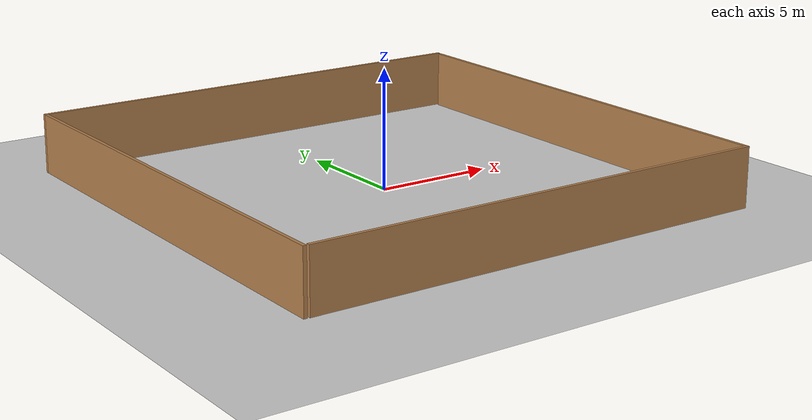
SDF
<?xml version='1.0'?>
<sdf version='1.7'>
<world name='default'>

    <pose>0.100838 -0.050768 0 0 -0 0</pose>
      <light name='sun' type='directional'>
      <cast_shadows>1</cast_shadows>
      <pose frame=''>0 0 10 0 -0 0</pose>
      <diffuse>0.8 0.8 0.8 1</diffuse>
      <specular>0.1 0.1 0.1 1</specular>
      <attenuation>
        <range>1000</range>
        <constant>0.9</constant>
        <linear>0.01</linear>
        <quadratic>0.001</quadratic>
      </attenuation>
      <direction>-0.5 0.5 -1</direction>
    </light>
    <model name='ground_plane'>
      <static>1</static>
      <link name='link'>
        <collision name='collision'>
          <geometry>
            <plane>
              <normal>0 0 1</normal>
              <size>100 100</size>
            </plane>
          </geometry>
          <surface>
            <friction>
              <ode>
                <mu>100</mu>
                <mu2>50</mu2>
              </ode>
              <torsional>
                <ode/>
              </torsional>
            </friction>
            <contact>
              <ode/>
            </contact>
            <bounce/>
          </surface>
          <max_contacts>10</max_contacts>
        </collision>
        <visual name='visual'>
          <cast_shadows>0</cast_shadows>
          <geometry>
            <plane>
              <normal>0 0 1</normal>
              <size>100 100</size>
            </plane>
          </geometry>
          <material>
            <script>
              <uri>file://media/materials/scripts/gazebo.material</uri>
              <name>Gazebo/Grey</name>
            </script>
          </material>
        </visual>
        <self_collide>0</self_collide>
        <kinematic>0</kinematic>
        <gravity>1</gravity>
      </link>
    </model>
    <gravity>0 0 -9.8</gravity>
    <magnetic_field>6e-06 2.3e-05 -4.2e-05</magnetic_field>
    <atmosphere type='adiabatic'/>
    <physics name='default_physics' default='0' type='ode'>
      <max_step_size>0.001</max_step_size>
      <real_time_factor>1</real_time_factor>
      <real_time_update_rate>1000</real_time_update_rate>
    </physics>
    <scene>
      <ambient>0.4 0.4 0.4 1</ambient>
      <background>0.7 0.7 0.7 1</background>
      <shadows>1</shadows>
    </scene>
    <spherical_coordinates>
      <surface_model>EARTH_WGS84</surface_model>
      <latitude_deg>0</latitude_deg>
      <longitude_deg>0</longitude_deg>
      <elevation>0</elevation>
      <heading_deg>0</heading_deg>
    </spherical_coordinates>
    <model name='box'>
    <link name='Wall_11'>
      <collision name='Wall_11_Collision'>
        <geometry>
          <box>
            <size>20.25 0.15 2.5</size>
          </box>
        </geometry>
        <pose>0 0 1.25 0 -0 0</pose>
      </collision>
      <visual name='Wall_11_Visual'>
        <pose>0 0 1.25 0 -0 0</pose>
        <geometry>
          <box>
            <size>20.25 0.15 2.5</size>
          </box>
        </geometry>
        <material>
          <script>
            <uri>file://media/materials/scripts/gazebo.material</uri>
            <name>Gazebo/Wood</name>
          </script>
          <ambient>1 1 1 1</ambient>
        </material>
        <meta>
          <layer>0</layer>
        </meta>
      </visual>
      <pose>0 9.93285 0 0 -0 3.14159</pose>
    </link>
    <link name='Wall_12'>
      <collision name='Wall_12_Collision'>
        <geometry>
          <box>
            <size>20 0.15 2.5</size>
          </box>
        </geometry>
        <pose>0 0 1.25 0 -0 0</pose>
      </collision>
      <visual name='Wall_12_Visual'>
        <pose>0 0 1.25 0 -0 0</pose>
        <geometry>
          <box>
            <size>20 0.15 2.5</size>
          </box>
        </geometry>
        <material>
          <script>
            <uri>file://media/materials/scripts/gazebo.material</uri>
            <name>Gazebo/Wood</name>
          </script>
          <ambient>1 1 1 1</ambient>
        </material>
        <meta>
          <layer>0</layer>
        </meta>
      </visual>
      <pose>-10.05 0.007855 0 0 -0 -1.5708</pose>
    </link>
    <link name='Wall_7'>
      <collision name='Wall_7_Collision'>
        <geometry>
          <box>
            <size>20 0.15 2.5</size>
          </box>
        </geometry>
        <pose>0 0 1.25 0 -0 0</pose>
      </collision>
      <visual name='Wall_7_Visual'>
        <pose>0 0 1.25 0 -0 0</pose>
        <geometry>
          <box>
            <size>20 0.15 2.5</size>
          </box>
        </geometry>
        <material>
          <script>
            <uri>file://media/materials/scripts/gazebo.material</uri>
            <name>Gazebo/Wood</name>
          </script>
          <ambient>1 1 1 1</ambient>
        </material>
        <meta>
          <layer>0</layer>
        </meta>
      </visual>
      <pose>0.109289 -9.93286 0 0 -0 0</pose>
    </link>
    <link name='Wall_8'>
      <collision name='Wall_8_Collision'>
        <geometry>
          <box>
            <size>19.75 0.15 2.5</size>
          </box>
        </geometry>
        <pose>0 0 1.25 0 -0 0</pose>
      </collision>
      <visual name='Wall_8_Visual'>
        <pose>0 0 1.25 0 -0 0</pose>
        <geometry>
          <box>
            <size>19.75 0.15 2.5</size>
          </box>
        </geometry>
        <material>
          <script>
            <uri>file://media/materials/scripts/gazebo.material</uri>
            <name>Gazebo/Wood</name>
          </script>
          <ambient>1 1 1 1</ambient>
        </material>
        <meta>
          <layer>0</layer>
        </meta>
      </visual>
      <pose>10.0343 -0.132856 0 0 -0 1.5708</pose>
    </link>
    <static>1</static>
  </model>
   </world>
</sdf>
